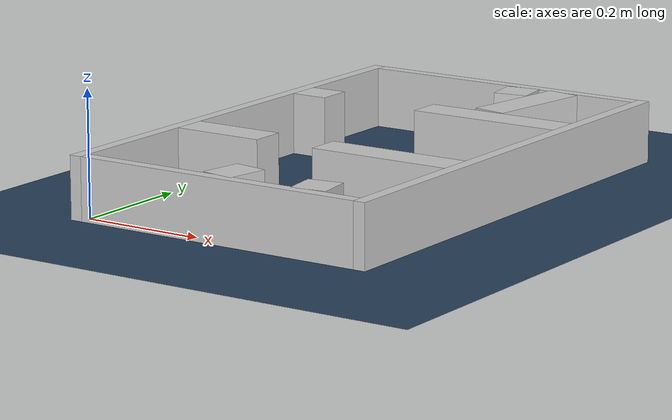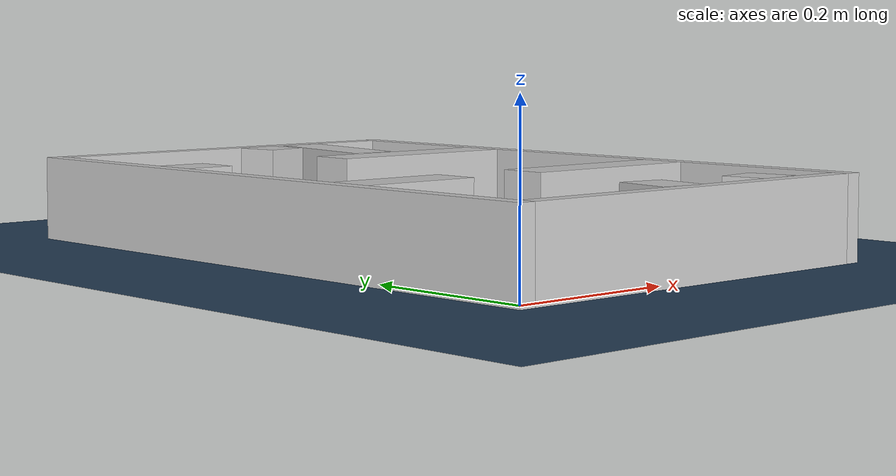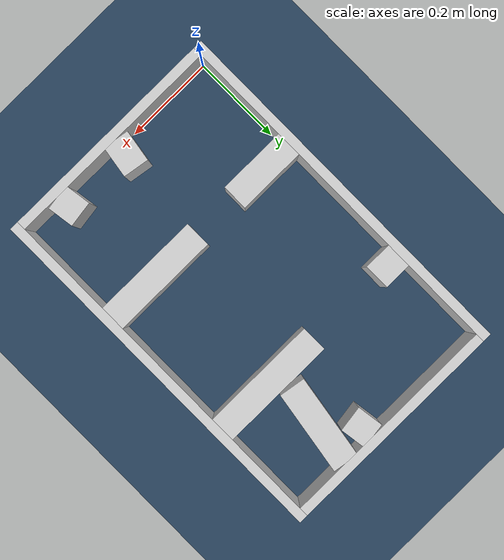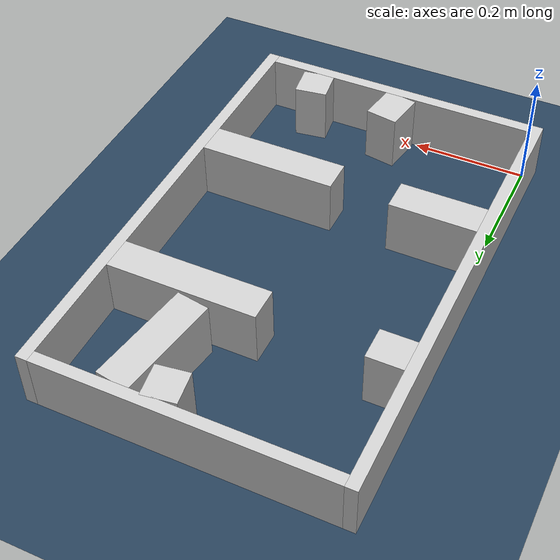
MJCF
<?xml version="1.0" ?>
<mujoco model="generated_real_template">
  <compiler angle="degree"/>
  <option timestep="0.002" integrator="implicitfast" iterations="100" cone="elliptic"/>
  <default>
    <geom density="1"/>
  </default>
  <asset>
    <texture builtin="gradient" height="3072" rgb1="0.3 0.5 0.7" rgb2="0 0 0" type="skybox" width="512"/>
    <texture builtin="checker" height="300" mark="edge" markrgb="0.8 0.8 0.8" name="groundplane" rgb1="0.2 0.3 0.4" rgb2="0.1 0.2 0.3" type="2d" width="300"/>
    <material name="groundplane" reflectance="0.2" texrepeat="5 5" texture="groundplane" texuniform="true"/>
  </asset>
  <worldbody>
    <light dir="0 0 -1" directional="true" pos="0 0 1.5"/>
    <geom name="floor" type="plane" condim="4" friction="0.5 0.005 0.001" material="groundplane" size="0 0 0.05"/>
    <body name="walls">
      <geom name="wall_boundary_left" type="box" condim="4" friction="1.0 0.005 0.0001" rgba="0.8 0.8 0.8 1" pos="-0.010000 0.387500 0.050000" euler="0 0 0.000000" size="0.010000 0.407500 0.050000"/>
      <geom name="wall_boundary_right" type="box" condim="4" friction="1.0 0.005 0.0001" rgba="0.8 0.8 0.8 1" pos="0.500000 0.387500 0.050000" euler="0 0 0.000000" size="0.010000 0.407500 0.050000"/>
      <geom name="wall_boundary_bottom" type="box" condim="4" friction="1.0 0.005 0.0001" rgba="0.8 0.8 0.8 1" pos="0.245000 -0.010000 0.050000" euler="0 0 0.000000" size="0.245000 0.010000 0.050000"/>
      <geom name="wall_boundary_top" type="box" condim="4" friction="1.0 0.005 0.0001" rgba="0.8 0.8 0.8 1" pos="0.245000 0.785000 0.050000" euler="0 0 0.000000" size="0.245000 0.010000 0.050000"/>
      <geom name="wall_inner_1_1" type="box" condim="4" friction="1.0 0.005 0.0001" rgba="0.8 0.8 0.8 1" pos="0.030578 0.556296 0.050000" euler="0 0 0.000000" size="0.030578 0.028500 0.050000"/>
      <geom name="wall_inner_1_2" type="box" condim="4" friction="1.0 0.005 0.0001" rgba="0.8 0.8 0.8 1" pos="0.362078 0.556296 0.050000" euler="0 0 0.000000" size="0.127922 0.028500 0.050000"/>
      <geom name="wall_inner_2_1" type="box" condim="4" friction="1.0 0.005 0.0001" rgba="0.8 0.8 0.8 1" pos="0.075280 0.247152 0.050000" euler="0 0 0.000000" size="0.075280 0.028500 0.050000"/>
      <geom name="wall_inner_2_2" type="box" condim="4" friction="1.0 0.005 0.0001" rgba="0.8 0.8 0.8 1" pos="0.371477 0.247152 0.050000" euler="0 0 0.000000" size="0.118523 0.028500 0.050000"/>
      <geom name="wall_inner_3_1" type="box" condim="4" friction="1.0 0.005 0.0001" rgba="0.8 0.8 0.8 1" pos="0.394794 0.028348 0.050000" euler="0 0 98.202983" size="0.028641 0.028500 0.050000"/>
      <geom name="wall_inner_3_2" type="box" condim="4" friction="1.0 0.005 0.0001" rgba="0.8 0.8 0.8 1" pos="0.291227 0.746790 0.050000" euler="0 0 98.202983" size="0.028502 0.028500 0.050000"/>
      <geom name="wall_inner_4_1" type="box" condim="4" friction="1.0 0.005 0.0001" rgba="0.8 0.8 0.8 1" pos="0.347939 0.684092 0.050000" euler="0 0 -99.193206" size="0.092091 0.028500 0.050000"/>
      <geom name="wall_inner_4_2" type="box" condim="4" friction="1.0 0.005 0.0001" rgba="0.8 0.8 0.8 1" pos="0.242794 0.034420 0.050000" euler="0 0 -99.193206" size="0.034867 0.028500 0.050000"/>
    </body>
  </worldbody>
</mujoco>
